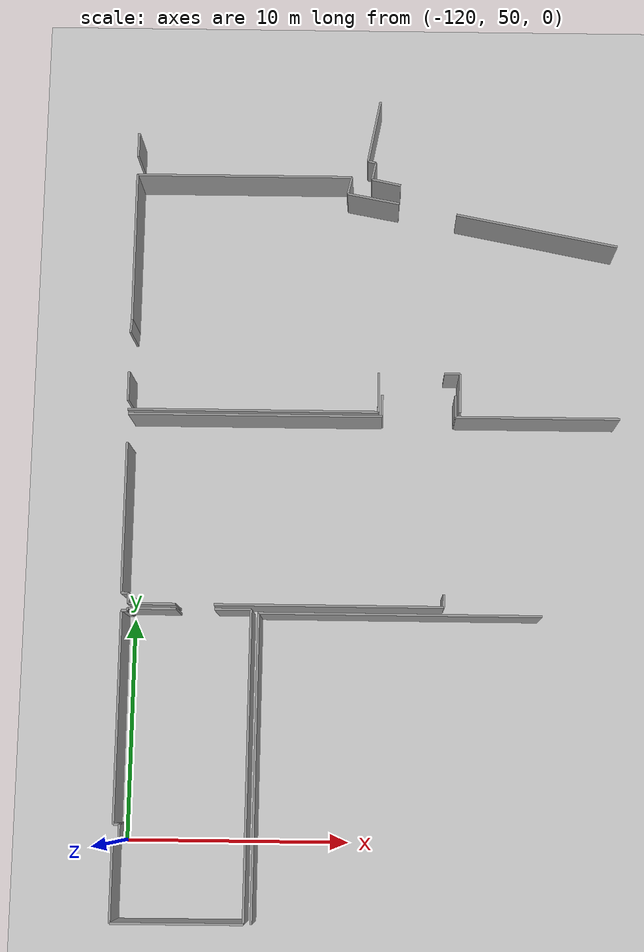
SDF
<sdf version="1.6">
 <world name="default">
  <model name="ground_plane">
   <static>1</static>
   <link name="link">
    <collision name="collision">
     <geometry><plane><normal>0 0 1</normal><size>100 100</size></plane></geometry>
     <surface><friction><ode><mu>100</mu><mu2>50</mu2></ode></friction></surface>
    </collision>
    <visual name="visual">
     <cast_shadows>0</cast_shadows>
     <geometry><plane><normal>0 0 1</normal><size>100 100</size></plane></geometry>
     <material>
      <script><uri>file://media/materials/scripts/gazebo.material</uri><name>Gazebo/Grey</name></script>
     </material>
    </visual>
   </link>
  </model>
  <model name="0510045925_40">
   <static>1</static>
   <link name="Wall_356">
    <collision name="Wall_356_Collision">
     <geometry><box><size>1.1418943209 0.1 2.5</size></box></geometry>
     <pose>0.57094716045 0 1.25 0 0 0</pose>
    </collision>
    <visual name="Wall_356_Visual">
     <pose>0.57094716045 0 1.25 0 0 0</pose>
     <geometry><box><size>1.1418943209 0.1 2.5</size></box></geometry>
     <material>
      <script><uri>file://media/materials/scripts/gazebo.material</uri><name>Gazebo/Grey</name></script>
      <ambient>1 1 1 1</ambient>
     </material>
    </visual>
    <pose>13.5964061826 -19.3395345296 0 0 0 1.56190569641</pose>
   </link>
   <link name="Wall_504">
    <collision name="Wall_504_Collision">
     <geometry><box><size>1.37632695807 0.1 2.5</size></box></geometry>
     <pose>0.688163479036 0 1.25 0 0 0</pose>
    </collision>
    <visual name="Wall_504_Visual">
     <pose>0.688163479036 0 1.25 0 0 0</pose>
     <geometry><box><size>1.37632695807 0.1 2.5</size></box></geometry>
     <material>
      <script><uri>file://media/materials/scripts/gazebo.material</uri><name>Gazebo/Grey</name></script>
      <ambient>1 1 1 1</ambient>
     </material>
    </visual>
    <pose>26.0009136824 -20.6329027182 0 0 0 2.93450481135</pose>
   </link>
   <link name="Wall_505">
    <collision name="Wall_505_Collision">
     <geometry><box><size>0.834318876117 0.1 2.5</size></box></geometry>
     <pose>0.417159438059 0 1.25 0 0 0</pose>
    </collision>
    <visual name="Wall_505_Visual">
     <pose>0.417159438059 0 1.25 0 0 0</pose>
     <geometry><box><size>0.834318876117 0.1 2.5</size></box></geometry>
     <material>
      <script><uri>file://media/materials/scripts/gazebo.material</uri><name>Gazebo/Grey</name></script>
      <ambient>1 1 1 1</ambient>
     </material>
    </visual>
    <pose>24.6539935535 -20.3499149768 0 0 0 1.37423598928</pose>
   </link>
   <link name="Wall_506">
    <collision name="Wall_506_Collision">
     <geometry><box><size>0.376206903017 0.1 2.5</size></box></geometry>
     <pose>0.188103451508 0 1.25 0 0 0</pose>
    </collision>
    <visual name="Wall_506_Visual">
     <pose>0.188103451508 0 1.25 0 0 0</pose>
     <geometry><box><size>0.376206903017 0.1 2.5</size></box></geometry>
     <material>
      <script><uri>file://media/materials/scripts/gazebo.material</uri><name>Gazebo/Grey</name></script>
      <ambient>1 1 1 1</ambient>
     </material>
    </visual>
    <pose>24.8169335804 -19.531661633 0 0 0 2.91985039674</pose>
   </link>
   <link name="Wall_507">
    <collision name="Wall_507_Collision">
     <geometry><box><size>3.02139829381 0.1 2.5</size></box></geometry>
     <pose>1.5106991469 0 1.25 0 0 0</pose>
    </collision>
    <visual name="Wall_507_Visual">
     <pose>1.5106991469 0 1.25 0 0 0</pose>
     <geometry><box><size>3.02139829381 0.1 2.5</size></box></geometry>
     <material>
      <script><uri>file://media/materials/scripts/gazebo.material</uri><name>Gazebo/Grey</name></script>
      <ambient>1 1 1 1</ambient>
     </material>
    </visual>
    <pose>24.4499378188 -19.4489226162 0 0 0 1.38603663327</pose>
   </link>
   <link name="Wall_637">
    <collision name="Wall_637_Collision">
     <geometry><box><size>7.06276490444 0.1 2.5</size></box></geometry>
     <pose>3.53138245222 0 1.25 0 0 0</pose>
    </collision>
    <visual name="Wall_637_Visual">
     <pose>3.53138245222 0 1.25 0 0 0</pose>
     <geometry><box><size>7.06276490444 0.1 2.5</size></box></geometry>
     <material>
      <script><uri>file://media/materials/scripts/gazebo.material</uri><name>Gazebo/Grey</name></script>
      <ambient>1 1 1 1</ambient>
     </material>
    </visual>
    <pose>13.5997055912 -27.3218192432 0 0 0 1.57079632679</pose>
   </link>
   <link name="Wall_638">
    <collision name="Wall_638_Collision">
     <geometry><box><size>10.0964442527 0.1 2.5</size></box></geometry>
     <pose>5.04822212634 0 1.25 0 0 0</pose>
    </collision>
    <visual name="Wall_638_Visual">
     <pose>5.04822212634 0 1.25 0 0 0</pose>
     <geometry><box><size>10.0964442527 0.1 2.5</size></box></geometry>
     <material>
      <script><uri>file://media/materials/scripts/gazebo.material</uri><name>Gazebo/Grey</name></script>
      <ambient>1 1 1 1</ambient>
     </material>
    </visual>
    <pose>13.5997055912 -20.2590543387 0 0 0 0.0</pose>
   </link>
   <link name="Wall_639">
    <collision name="Wall_639_Collision">
     <geometry><box><size>0.835649047537 0.1 2.5</size></box></geometry>
     <pose>0.417824523768 0 1.25 0 0 0</pose>
    </collision>
    <visual name="Wall_639_Visual">
     <pose>0.417824523768 0 1.25 0 0 0</pose>
     <geometry><box><size>0.835649047537 0.1 2.5</size></box></geometry>
     <material>
      <script><uri>file://media/materials/scripts/gazebo.material</uri><name>Gazebo/Grey</name></script>
      <ambient>1 1 1 1</ambient>
     </material>
    </visual>
    <pose>23.6961498439 -20.2590543387 0 0 0 -1.78254724764</pose>
   </link>
   <link name="Wall_640">
    <collision name="Wall_640_Collision">
     <geometry><box><size>2.4584078967 0.1 2.5</size></box></geometry>
     <pose>1.22920394835 0 1.25 0 0 0</pose>
    </collision>
    <visual name="Wall_640_Visual">
     <pose>1.22920394835 0 1.25 0 0 0</pose>
     <geometry><box><size>2.4584078967 0.1 2.5</size></box></geometry>
     <material>
      <script><uri>file://media/materials/scripts/gazebo.material</uri><name>Gazebo/Grey</name></script>
      <ambient>1 1 1 1</ambient>
     </material>
    </visual>
    <pose>23.5205197838 -21.0760386792 0 0 0 -0.188385700193</pose>
   </link>
   <link name="Wall_641">
    <collision name="Wall_641_Collision">
     <geometry><box><size>7.67456390388 0.1 2.5</size></box></geometry>
     <pose>3.83728195194 0 1.25 0 0 0</pose>
    </collision>
    <visual name="Wall_641_Visual">
     <pose>3.83728195194 0 1.25 0 0 0</pose>
     <geometry><box><size>7.67456390388 0.1 2.5</size></box></geometry>
     <material>
      <script><uri>file://media/materials/scripts/gazebo.material</uri><name>Gazebo/Grey</name></script>
      <ambient>1 1 1 1</ambient>
     </material>
    </visual>
    <pose>28.6353645847 -22.0453034187 0 0 0 -0.193880339483</pose>
   </link>
   <link name="Wall_644">
    <collision name="Wall_644_Collision">
     <geometry><box><size>1.84386183092 0.1 2.5</size></box></geometry>
     <pose>0.921930915459 0 1.25 0 0 0</pose>
    </collision>
    <visual name="Wall_644_Visual">
     <pose>0.921930915459 0 1.25 0 0 0</pose>
     <geometry><box><size>1.84386183092 0.1 2.5</size></box></geometry>
     <material>
      <script><uri>file://media/materials/scripts/gazebo.material</uri><name>Gazebo/Grey</name></script>
      <ambient>1 1 1 1</ambient>
     </material>
    </visual>
    <pose>28.8333291033 -31.5767873912 0 0 0 1.57079632679</pose>
   </link>
   <link name="Wall_645">
    <collision name="Wall_645_Collision">
     <geometry><box><size>0.725869901779 0.1 2.5</size></box></geometry>
     <pose>0.36293495089 0 1.25 0 0 0</pose>
    </collision>
    <visual name="Wall_645_Visual">
     <pose>0.36293495089 0 1.25 0 0 0</pose>
     <geometry><box><size>0.725869901779 0.1 2.5</size></box></geometry>
     <material>
      <script><uri>file://media/materials/scripts/gazebo.material</uri><name>Gazebo/Grey</name></script>
      <ambient>1 1 1 1</ambient>
     </material>
    </visual>
    <pose>28.8333291033 -29.7329255603 0 0 0 3.14159265359</pose>
   </link>
   <link name="Wall_646">
    <collision name="Wall_646_Collision">
     <geometry><box><size>1.85477525951 0.1 2.5</size></box></geometry>
     <pose>0.927387629756 0 1.25 0 0 0</pose>
    </collision>
    <visual name="Wall_646_Visual">
     <pose>0.927387629756 0 1.25 0 0 0</pose>
     <geometry><box><size>1.85477525951 0.1 2.5</size></box></geometry>
     <material>
      <script><uri>file://media/materials/scripts/gazebo.material</uri><name>Gazebo/Grey</name></script>
      <ambient>1 1 1 1</ambient>
     </material>
    </visual>
    <pose>25.0844394812 -29.7329255603 0 0 0 -1.57079632679</pose>
   </link>
   <link name="Wall_647">
    <collision name="Wall_647_Collision">
     <geometry><box><size>11.5306718104 0.1 2.5</size></box></geometry>
     <pose>5.76533590518 0 1.25 0 0 0</pose>
    </collision>
    <visual name="Wall_647_Visual">
     <pose>5.76533590518 0 1.25 0 0 0</pose>
     <geometry><box><size>11.5306718104 0.1 2.5</size></box></geometry>
     <material>
      <script><uri>file://media/materials/scripts/gazebo.material</uri><name>Gazebo/Grey</name></script>
      <ambient>1 1 1 1</ambient>
     </material>
    </visual>
    <pose>25.0844394812 -31.5877008198 0 0 0 3.14159265359</pose>
   </link>
   <link name="Wall_648">
    <collision name="Wall_648_Collision">
     <geometry><box><size>1.3565645542 0.1 2.5</size></box></geometry>
     <pose>0.6782822771 0 1.25 0 0 0</pose>
    </collision>
    <visual name="Wall_648_Visual">
     <pose>0.6782822771 0 1.25 0 0 0</pose>
     <geometry><box><size>1.3565645542 0.1 2.5</size></box></geometry>
     <material>
      <script><uri>file://media/materials/scripts/gazebo.material</uri><name>Gazebo/Grey</name></script>
      <ambient>1 1 1 1</ambient>
     </material>
    </visual>
    <pose>13.5537676709 -31.1608081013 0 0 0 1.57079632679</pose>
   </link>
   <link name="Wall_649">
    <collision name="Wall_649_Collision">
     <geometry><box><size>0.63160604218 0.1 2.5</size></box></geometry>
     <pose>0.31580302109 0 1.25 0 0 0</pose>
    </collision>
    <visual name="Wall_649_Visual">
     <pose>0.31580302109 0 1.25 0 0 0</pose>
     <geometry><box><size>0.63160604218 0.1 2.5</size></box></geometry>
     <material>
      <script><uri>file://media/materials/scripts/gazebo.material</uri><name>Gazebo/Grey</name></script>
      <ambient>1 1 1 1</ambient>
     </material>
    </visual>
    <pose>13.5537676709 -27.9517524936 0 0 0 1.49800012882</pose>
   </link>
   <link name="Wall_650">
    <collision name="Wall_650_Collision">
     <geometry><box><size>6.95896043248 0.1 2.5</size></box></geometry>
     <pose>3.47948021624 0 1.25 0 0 0</pose>
    </collision>
    <visual name="Wall_650_Visual">
     <pose>3.47948021624 0 1.25 0 0 0</pose>
     <geometry><box><size>6.95896043248 0.1 2.5</size></box></geometry>
     <material>
      <script><uri>file://media/materials/scripts/gazebo.material</uri><name>Gazebo/Grey</name></script>
      <ambient>1 1 1 1</ambient>
     </material>
    </visual>
    <pose>13.5915839699 -40.0885002919 0 0 0 1.57079632679</pose>
   </link>
   <link name="Wall_651">
    <collision name="Wall_651_Collision">
     <geometry><box><size>11.6585873455 0.1 2.5</size></box></geometry>
     <pose>5.82929367275 0 1.25 0 0 0</pose>
    </collision>
    <visual name="Wall_651_Visual">
     <pose>5.82929367275 0 1.25 0 0 0</pose>
     <geometry><box><size>11.6585873455 0.1 2.5</size></box></geometry>
     <material>
      <script><uri>file://media/materials/scripts/gazebo.material</uri><name>Gazebo/Grey</name></script>
      <ambient>1 1 1 1</ambient>
     </material>
    </visual>
    <pose>13.5915839699 -31.7909951524 0 0 0 0.0</pose>
   </link>
   <link name="Wall_652">
    <collision name="Wall_652_Collision">
     <geometry><box><size>1.01875586914 0.1 2.5</size></box></geometry>
     <pose>0.50937793457 0 1.25 0 0 0</pose>
    </collision>
    <visual name="Wall_652_Visual">
     <pose>0.50937793457 0 1.25 0 0 0</pose>
     <geometry><box><size>1.01875586914 0.1 2.5</size></box></geometry>
     <material>
      <script><uri>file://media/materials/scripts/gazebo.material</uri><name>Gazebo/Grey</name></script>
      <ambient>1 1 1 1</ambient>
     </material>
    </visual>
    <pose>25.2501713154 -31.7909951524 0 0 0 1.57079632679</pose>
   </link>
   <link name="Wall_653">
    <collision name="Wall_653_Collision">
     <geometry><box><size>1.01012664653 0.1 2.5</size></box></geometry>
     <pose>0.505063323266 0 1.25 0 0 0</pose>
    </collision>
    <visual name="Wall_653_Visual">
     <pose>0.505063323266 0 1.25 0 0 0</pose>
     <geometry><box><size>1.01012664653 0.1 2.5</size></box></geometry>
     <material>
      <script><uri>file://media/materials/scripts/gazebo.material</uri><name>Gazebo/Grey</name></script>
      <ambient>1 1 1 1</ambient>
     </material>
    </visual>
    <pose>28.630542372 -30.7722392833 0 0 0 -1.57079632679</pose>
   </link>
   <link name="Wall_654">
    <collision name="Wall_654_Collision">
     <geometry><box><size>7.5548843938 0.1 2.5</size></box></geometry>
     <pose>3.7774421969 0 1.25 0 0 0</pose>
    </collision>
    <visual name="Wall_654_Visual">
     <pose>3.7774421969 0 1.25 0 0 0</pose>
     <geometry><box><size>7.5548843938 0.1 2.5</size></box></geometry>
     <material>
      <script><uri>file://media/materials/scripts/gazebo.material</uri><name>Gazebo/Grey</name></script>
      <ambient>1 1 1 1</ambient>
     </material>
    </visual>
    <pose>28.630542372 -31.7823659298 0 0 0 0.0</pose>
   </link>
   <link name="Wall_660">
    <collision name="Wall_660_Collision">
     <geometry><box><size>0.583487728738 0.1 2.5</size></box></geometry>
     <pose>0.291743864369 0 1.25 0 0 0</pose>
    </collision>
    <visual name="Wall_660_Visual">
     <pose>0.291743864369 0 1.25 0 0 0</pose>
     <geometry><box><size>0.583487728738 0.1 2.5</size></box></geometry>
     <material>
      <script><uri>file://media/materials/scripts/gazebo.material</uri><name>Gazebo/Grey</name></script>
      <ambient>1 1 1 1</ambient>
     </material>
    </visual>
    <pose>28.1356310754 -39.9819040126 0 0 0 -1.57079632679</pose>
   </link>
   <link name="Wall_661">
    <collision name="Wall_661_Collision">
     <geometry><box><size>10.3558285323 0.1 2.5</size></box></geometry>
     <pose>5.17791426614 0 1.25 0 0 0</pose>
    </collision>
    <visual name="Wall_661_Visual">
     <pose>5.17791426614 0 1.25 0 0 0</pose>
     <geometry><box><size>10.3558285323 0.1 2.5</size></box></geometry>
     <material>
      <script><uri>file://media/materials/scripts/gazebo.material</uri><name>Gazebo/Grey</name></script>
      <ambient>1 1 1 1</ambient>
     </material>
    </visual>
    <pose>28.1356310754 -40.5653917413 0 0 0 3.14159265359</pose>
   </link>
   <link name="Wall_662">
    <collision name="Wall_662_Collision">
     <geometry><box><size>2.13420979163 0.1 2.5</size></box></geometry>
     <pose>1.06710489581 0 1.25 0 0 0</pose>
    </collision>
    <visual name="Wall_662_Visual">
     <pose>1.06710489581 0 1.25 0 0 0</pose>
     <geometry><box><size>2.13420979163 0.1 2.5</size></box></geometry>
     <material>
      <script><uri>file://media/materials/scripts/gazebo.material</uri><name>Gazebo/Grey</name></script>
      <ambient>1 1 1 1</ambient>
     </material>
    </visual>
    <pose>16.0488820081 -40.5653917413 0 0 0 3.14159265359</pose>
   </link>
   <link name="Wall_663">
    <collision name="Wall_663_Collision">
     <geometry><box><size>0.471815436156 0.1 2.5</size></box></geometry>
     <pose>0.235907718078 0 1.25 0 0 0</pose>
    </collision>
    <visual name="Wall_663_Visual">
     <pose>0.235907718078 0 1.25 0 0 0</pose>
     <geometry><box><size>0.471815436156 0.1 2.5</size></box></geometry>
     <material>
      <script><uri>file://media/materials/scripts/gazebo.material</uri><name>Gazebo/Grey</name></script>
      <ambient>1 1 1 1</ambient>
     </material>
    </visual>
    <pose>13.9146722164 -40.5653917413 0 0 0 1.57079632679</pose>
   </link>
   <link name="Wall_664">
    <collision name="Wall_664_Collision">
     <geometry><box><size>0.323128118448 0.1 2.5</size></box></geometry>
     <pose>0.161564059224 0 1.25 0 0 0</pose>
    </collision>
    <visual name="Wall_664_Visual">
     <pose>0.161564059224 0 1.25 0 0 0</pose>
     <geometry><box><size>0.323128118448 0.1 2.5</size></box></geometry>
     <material>
      <script><uri>file://media/materials/scripts/gazebo.material</uri><name>Gazebo/Grey</name></script>
      <ambient>1 1 1 1</ambient>
     </material>
    </visual>
    <pose>13.9146722164 -40.0935763052 0 0 0 3.12588302697</pose>
   </link>
   <link name="Wall_665">
    <collision name="Wall_665_Collision">
     <geometry><box><size>3.46006446537 0.1 2.5</size></box></geometry>
     <pose>1.73003223268 0 1.25 0 0 0</pose>
    </collision>
    <visual name="Wall_665_Visual">
     <pose>1.73003223268 0 1.25 0 0 0</pose>
     <geometry><box><size>3.46006446537 0.1 2.5</size></box></geometry>
     <material>
      <script><uri>file://media/materials/scripts/gazebo.material</uri><name>Gazebo/Grey</name></script>
      <ambient>1 1 1 1</ambient>
     </material>
    </visual>
    <pose>13.6205172458 -54.5929544935 0 0 0 1.57079632679</pose>
   </link>
   <link name="Wall_666">
    <collision name="Wall_666_Collision">
     <geometry><box><size>0.274358518819 0.1 2.5</size></box></geometry>
     <pose>0.13717925941 0 1.25 0 0 0</pose>
    </collision>
    <visual name="Wall_666_Visual">
     <pose>0.13717925941 0 1.25 0 0 0</pose>
     <geometry><box><size>0.274358518819 0.1 2.5</size></box></geometry>
     <material>
      <script><uri>file://media/materials/scripts/gazebo.material</uri><name>Gazebo/Grey</name></script>
      <ambient>1 1 1 1</ambient>
     </material>
    </visual>
    <pose>13.6205172458 -51.1328900282 0 0 0 0.0</pose>
   </link>
   <link name="Wall_667">
    <collision name="Wall_667_Collision">
     <geometry><box><size>0.789320068019 0.1 2.5</size></box></geometry>
     <pose>0.394660034009 0 1.25 0 0 0</pose>
    </collision>
    <visual name="Wall_667_Visual">
     <pose>0.394660034009 0 1.25 0 0 0</pose>
     <geometry><box><size>0.789320068019 0.1 2.5</size></box></geometry>
     <material>
      <script><uri>file://media/materials/scripts/gazebo.material</uri><name>Gazebo/Grey</name></script>
      <ambient>1 1 1 1</ambient>
     </material>
    </visual>
    <pose>13.8948757646 -51.1328900282 0 0 0 1.57079632679</pose>
   </link>
   <link name="Wall_668">
    <collision name="Wall_668_Collision">
     <geometry><box><size>0.271059110175 0.1 2.5</size></box></geometry>
     <pose>0.135529555087 0 1.25 0 0 0</pose>
    </collision>
    <visual name="Wall_668_Visual">
     <pose>0.135529555087 0 1.25 0 0 0</pose>
     <geometry><box><size>0.271059110175 0.1 2.5</size></box></geometry>
     <material>
      <script><uri>file://media/materials/scripts/gazebo.material</uri><name>Gazebo/Grey</name></script>
      <ambient>1 1 1 1</ambient>
     </material>
    </visual>
    <pose>13.8948757646 -50.3435699602 0 0 0 3.14159265359</pose>
   </link>
   <link name="Wall_669">
    <collision name="Wall_669_Collision">
     <geometry><box><size>9.46321159361 0.1 2.5</size></box></geometry>
     <pose>4.73160579681 0 1.25 0 0 0</pose>
    </collision>
    <visual name="Wall_669_Visual">
     <pose>4.73160579681 0 1.25 0 0 0</pose>
     <geometry><box><size>9.46321159361 0.1 2.5</size></box></geometry>
     <material>
      <script><uri>file://media/materials/scripts/gazebo.material</uri><name>Gazebo/Grey</name></script>
      <ambient>1 1 1 1</ambient>
     </material>
    </visual>
    <pose>13.6238166544 -50.3435699602 0 0 0 1.57079632679</pose>
   </link>
   <link name="Wall_670">
    <collision name="Wall_670_Collision">
     <geometry><box><size>0.265729296211 0.1 2.5</size></box></geometry>
     <pose>0.132864648105 0 1.25 0 0 0</pose>
    </collision>
    <visual name="Wall_670_Visual">
     <pose>0.132864648105 0 1.25 0 0 0</pose>
     <geometry><box><size>0.265729296211 0.1 2.5</size></box></geometry>
     <material>
      <script><uri>file://media/materials/scripts/gazebo.material</uri><name>Gazebo/Grey</name></script>
      <ambient>1 1 1 1</ambient>
     </material>
    </visual>
    <pose>13.6238166544 -40.8803583665 0 0 0 0.0</pose>
   </link>
   <link name="Wall_671">
    <collision name="Wall_671_Collision">
     <geometry><box><size>0.107611481942 0.1 2.5</size></box></geometry>
     <pose>0.053805740971 0 1.25 0 0 0</pose>
    </collision>
    <visual name="Wall_671_Visual">
     <pose>0.053805740971 0 1.25 0 0 0</pose>
     <geometry><box><size>0.107611481942 0.1 2.5</size></box></geometry>
     <material>
      <script><uri>file://media/materials/scripts/gazebo.material</uri><name>Gazebo/Grey</name></script>
      <ambient>1 1 1 1</ambient>
     </material>
    </visual>
    <pose>13.8895459506 -40.8803583665 0 0 0 1.57079632679</pose>
   </link>
   <link name="Wall_672">
    <collision name="Wall_672_Collision">
     <geometry><box><size>2.2024821705 0.1 2.5</size></box></geometry>
     <pose>1.10124108525 0 1.25 0 0 0</pose>
    </collision>
    <visual name="Wall_672_Visual">
     <pose>1.10124108525 0 1.25 0 0 0</pose>
     <geometry><box><size>2.2024821705 0.1 2.5</size></box></geometry>
     <material>
      <script><uri>file://media/materials/scripts/gazebo.material</uri><name>Gazebo/Grey</name></script>
      <ambient>1 1 1 1</ambient>
     </material>
    </visual>
    <pose>13.8895459506 -40.7727468846 0 0 0 0.0</pose>
   </link>
   <link name="Wall_673">
    <collision name="Wall_673_Collision">
     <geometry><box><size>1.64132890028 0.1 2.5</size></box></geometry>
     <pose>0.820664450141 0 1.25 0 0 0</pose>
    </collision>
    <visual name="Wall_673_Visual">
     <pose>0.820664450141 0 1.25 0 0 0</pose>
     <geometry><box><size>1.64132890028 0.1 2.5</size></box></geometry>
     <material>
      <script><uri>file://media/materials/scripts/gazebo.material</uri><name>Gazebo/Grey</name></script>
      <ambient>1 1 1 1</ambient>
     </material>
    </visual>
    <pose>17.8183802442 -40.7727468846 0 0 0 0.0</pose>
   </link>
   <link name="Wall_674">
    <collision name="Wall_674_Collision">
     <geometry><box><size>13.8032029644 0.1 2.5</size></box></geometry>
     <pose>6.9016014822 0 1.25 0 0 0</pose>
    </collision>
    <visual name="Wall_674_Visual">
     <pose>6.9016014822 0 1.25 0 0 0</pose>
     <geometry><box><size>13.8032029644 0.1 2.5</size></box></geometry>
     <material>
      <script><uri>file://media/materials/scripts/gazebo.material</uri><name>Gazebo/Grey</name></script>
      <ambient>1 1 1 1</ambient>
     </material>
    </visual>
    <pose>19.4597091444 -40.7727468846 0 0 0 -1.57079632679</pose>
   </link>
   <link name="Wall_675">
    <collision name="Wall_675_Collision">
     <geometry><box><size>5.83921665873 0.1 2.5</size></box></geometry>
     <pose>2.91960832936 0 1.25 0 0 0</pose>
    </collision>
    <visual name="Wall_675_Visual">
     <pose>2.91960832936 0 1.25 0 0 0</pose>
     <geometry><box><size>5.83921665873 0.1 2.5</size></box></geometry>
     <material>
      <script><uri>file://media/materials/scripts/gazebo.material</uri><name>Gazebo/Grey</name></script>
      <ambient>1 1 1 1</ambient>
     </material>
    </visual>
    <pose>19.4597091444 -54.575949849 0 0 0 -3.13868050465</pose>
   </link>
   <link name="Wall_676">
    <collision name="Wall_676_Collision">
     <geometry><box><size>13.657267582 0.1 2.5</size></box></geometry>
     <pose>6.82863379102 0 1.25 0 0 0</pose>
    </collision>
    <visual name="Wall_676_Visual">
     <pose>6.82863379102 0 1.25 0 0 0</pose>
     <geometry><box><size>13.657267582 0.1 2.5</size></box></geometry>
     <material>
      <script><uri>file://media/materials/scripts/gazebo.material</uri><name>Gazebo/Grey</name></script>
      <ambient>1 1 1 1</ambient>
     </material>
    </visual>
    <pose>19.7995482348 -54.5828024669 0 0 0 1.57079632679</pose>
   </link>
   <link name="Wall_677">
    <collision name="Wall_677_Collision">
     <geometry><box><size>12.7808938859 0.1 2.5</size></box></geometry>
     <pose>6.39044694297 0 1.25 0 0 0</pose>
    </collision>
    <visual name="Wall_677_Visual">
     <pose>6.39044694297 0 1.25 0 0 0</pose>
     <geometry><box><size>12.7808938859 0.1 2.5</size></box></geometry>
     <material>
      <script><uri>file://media/materials/scripts/gazebo.material</uri><name>Gazebo/Grey</name></script>
      <ambient>1 1 1 1</ambient>
     </material>
    </visual>
    <pose>19.7995482348 -40.9255348849 0 0 0 0.0</pose>
   </link>
   <pose>-133.95 101.083118449 0 0 0 0</pose>
  </model>
 </world>
</sdf>
